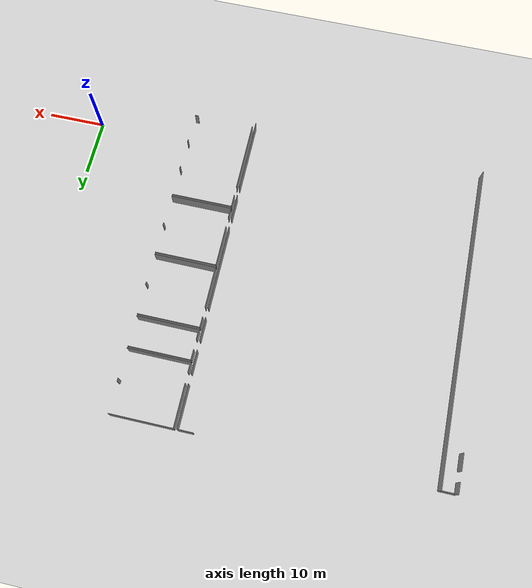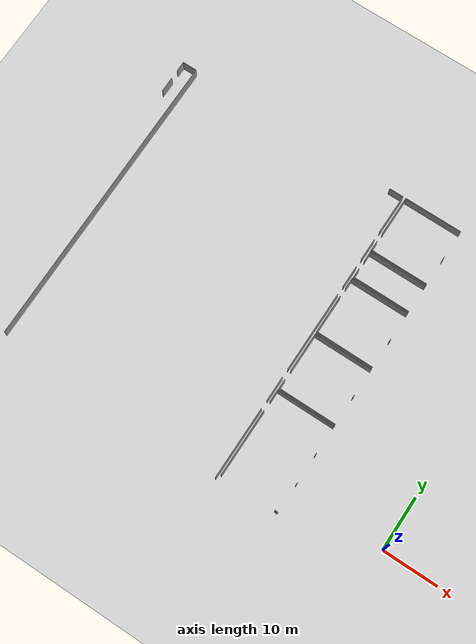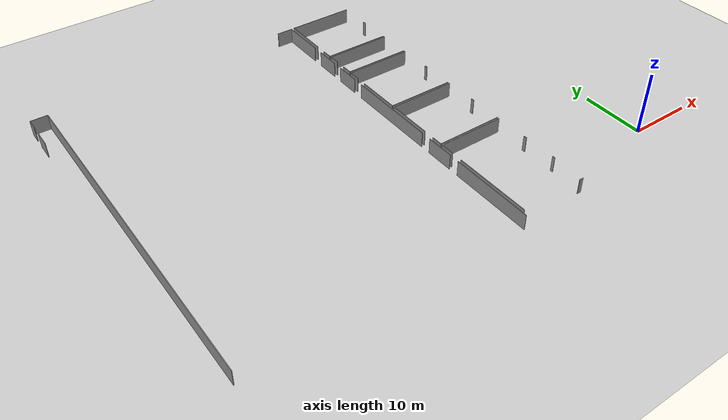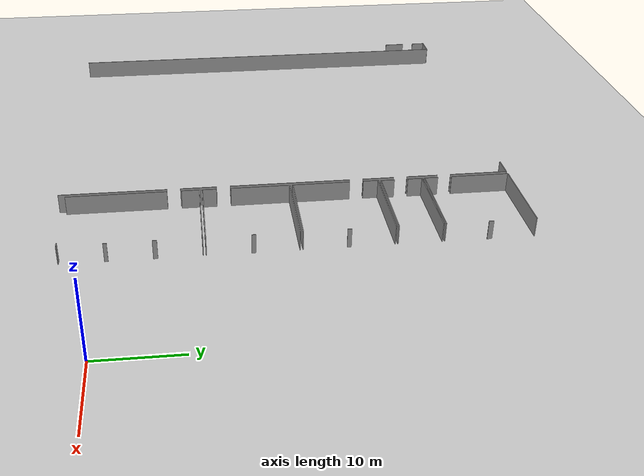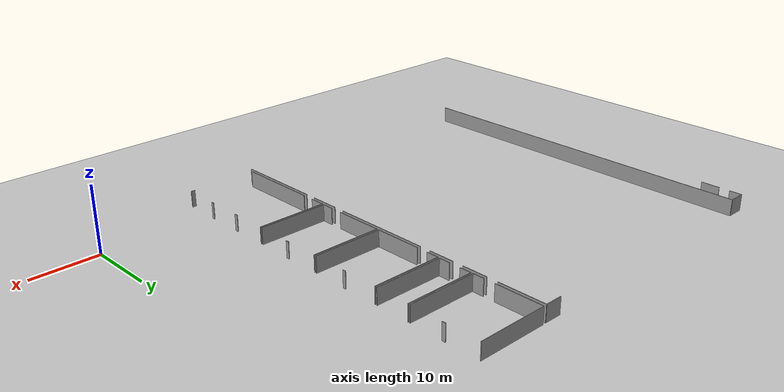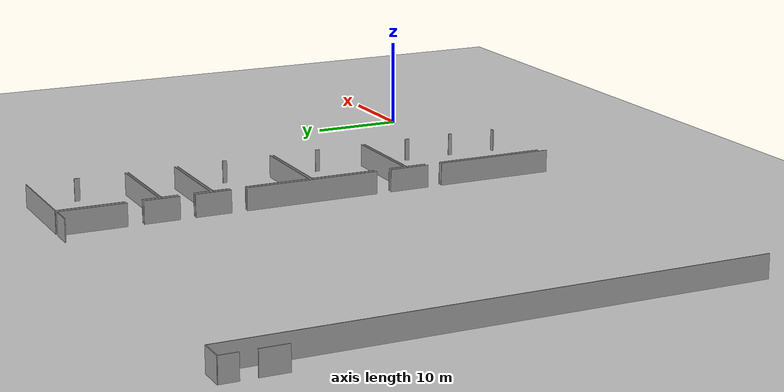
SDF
<sdf version="1.6">
 <world name="default">
  <model name="ground_plane">
   <static>1</static>
   <link name="link">
    <collision name="collision">
     <geometry><plane><normal>0 0 1</normal><size>100 100</size></plane></geometry>
     <surface><friction><ode><mu>100</mu><mu2>50</mu2></ode></friction></surface>
    </collision>
    <visual name="visual">
     <cast_shadows>0</cast_shadows>
     <geometry><plane><normal>0 0 1</normal><size>100 100</size></plane></geometry>
     <material>
      <script><uri>file://media/materials/scripts/gazebo.material</uri><name>Gazebo/Grey</name></script>
     </material>
    </visual>
   </link>
  </model>
  <model name="0510045905_A_40_1_103">
   <static>1</static>
   <link name="Wall_12">
    <collision name="Wall_12_Collision">
     <geometry><box><size>2.8588288294 0.1 2.5</size></box></geometry>
     <pose>1.4294144147 0 1.25 0 0 0</pose>
    </collision>
    <visual name="Wall_12_Visual">
     <pose>1.4294144147 0 1.25 0 0 0</pose>
     <geometry><box><size>2.8588288294 0.1 2.5</size></box></geometry>
     <material>
      <script><uri>file://media/materials/scripts/gazebo.material</uri><name>Gazebo/Grey</name></script>
      <ambient>1 1 1 1</ambient>
     </material>
    </visual>
    <pose>11.2497858543 -17.5187020552 0 0 0 1.57079632679</pose>
   </link>
   <link name="Wall_13">
    <collision name="Wall_13_Collision">
     <geometry><box><size>1.88575090576 0.1 2.5</size></box></geometry>
     <pose>0.942875452878 0 1.25 0 0 0</pose>
    </collision>
    <visual name="Wall_13_Visual">
     <pose>0.942875452878 0 1.25 0 0 0</pose>
     <geometry><box><size>1.88575090576 0.1 2.5</size></box></geometry>
     <material>
      <script><uri>file://media/materials/scripts/gazebo.material</uri><name>Gazebo/Grey</name></script>
      <ambient>1 1 1 1</ambient>
     </material>
    </visual>
    <pose>11.2497858543 -13.0309702226 0 0 0 1.57079632679</pose>
   </link>
   <link name="Wall_14">
    <collision name="Wall_14_Collision">
     <geometry><box><size>2.6314219907 0.1 2.5</size></box></geometry>
     <pose>1.31571099535 0 1.25 0 0 0</pose>
    </collision>
    <visual name="Wall_14_Visual">
     <pose>1.31571099535 0 1.25 0 0 0</pose>
     <geometry><box><size>2.6314219907 0.1 2.5</size></box></geometry>
     <material>
      <script><uri>file://media/materials/scripts/gazebo.material</uri><name>Gazebo/Grey</name></script>
      <ambient>1 1 1 1</ambient>
     </material>
    </visual>
    <pose>11.2497858543 -11.1452193169 0 0 0 0.0</pose>
   </link>
   <link name="Wall_15">
    <collision name="Wall_15_Collision">
     <geometry><box><size>55.7222895503 0.1 2.5</size></box></geometry>
     <pose>27.8611447752 0 1.25 0 0 0</pose>
    </collision>
    <visual name="Wall_15_Visual">
     <pose>27.8611447752 0 1.25 0 0 0</pose>
     <geometry><box><size>55.7222895503 0.1 2.5</size></box></geometry>
     <material>
      <script><uri>file://media/materials/scripts/gazebo.material</uri><name>Gazebo/Grey</name></script>
      <ambient>1 1 1 1</ambient>
     </material>
    </visual>
    <pose>13.881207845 -11.1452193169 0 0 0 -1.57079632679</pose>
   </link>
   <link name="Wall_65">
    <collision name="Wall_65_Collision">
     <geometry><box><size>2.63675183848 0.1 2.5</size></box></geometry>
     <pose>1.31837591924 0 1.25 0 0 0</pose>
    </collision>
    <visual name="Wall_65_Visual">
     <pose>1.31837591924 0 1.25 0 0 0</pose>
     <geometry><box><size>2.63675183848 0.1 2.5</size></box></geometry>
     <material>
      <script><uri>file://media/materials/scripts/gazebo.material</uri><name>Gazebo/Grey</name></script>
      <ambient>1 1 1 1</ambient>
     </material>
    </visual>
    <pose>53.0142192725 -11.206131863 0 0 0 0.0</pose>
   </link>
   <link name="Wall_66">
    <collision name="Wall_66_Collision">
     <geometry><box><size>7.33184012995 0.1 2.5</size></box></geometry>
     <pose>3.66592006497 0 1.25 0 0 0</pose>
    </collision>
    <visual name="Wall_66_Visual">
     <pose>3.66592006497 0 1.25 0 0 0</pose>
     <geometry><box><size>7.33184012995 0.1 2.5</size></box></geometry>
     <material>
      <script><uri>file://media/materials/scripts/gazebo.material</uri><name>Gazebo/Grey</name></script>
      <ambient>1 1 1 1</ambient>
     </material>
    </visual>
    <pose>55.650971111 -11.206131863 0 0 0 -1.57079632679</pose>
   </link>
   <link name="Wall_67">
    <collision name="Wall_67_Collision">
     <geometry><box><size>3.92429078127 0.1 2.5</size></box></geometry>
     <pose>1.96214539063 0 1.25 0 0 0</pose>
    </collision>
    <visual name="Wall_67_Visual">
     <pose>1.96214539063 0 1.25 0 0 0</pose>
     <geometry><box><size>3.92429078127 0.1 2.5</size></box></geometry>
     <material>
      <script><uri>file://media/materials/scripts/gazebo.material</uri><name>Gazebo/Grey</name></script>
      <ambient>1 1 1 1</ambient>
     </material>
    </visual>
    <pose>55.650971111 -20.2625584538 0 0 0 -1.57079632679</pose>
   </link>
   <link name="Wall_68">
    <collision name="Wall_68_Collision">
     <geometry><box><size>3.99053317513 0.1 2.5</size></box></geometry>
     <pose>1.99526658756 0 1.25 0 0 0</pose>
    </collision>
    <visual name="Wall_68_Visual">
     <pose>1.99526658756 0 1.25 0 0 0</pose>
     <geometry><box><size>3.99053317513 0.1 2.5</size></box></geometry>
     <material>
      <script><uri>file://media/materials/scripts/gazebo.material</uri><name>Gazebo/Grey</name></script>
      <ambient>1 1 1 1</ambient>
     </material>
    </visual>
    <pose>55.650971111 -25.8479851272 0 0 0 -1.57079632679</pose>
   </link>
   <link name="Wall_69">
    <collision name="Wall_69_Collision">
     <geometry><box><size>15.0337239773 0.1 2.5</size></box></geometry>
     <pose>7.51686198867 0 1.25 0 0 0</pose>
    </collision>
    <visual name="Wall_69_Visual">
     <pose>7.51686198867 0 1.25 0 0 0</pose>
     <geometry><box><size>15.0337239773 0.1 2.5</size></box></geometry>
     <material>
      <script><uri>file://media/materials/scripts/gazebo.material</uri><name>Gazebo/Grey</name></script>
      <ambient>1 1 1 1</ambient>
     </material>
    </visual>
    <pose>55.650971111 -31.5364555243 0 0 0 -1.57079632679</pose>
   </link>
   <link name="Wall_70">
    <collision name="Wall_70_Collision">
     <geometry><box><size>4.50219856221 0.1 2.5</size></box></geometry>
     <pose>2.25109928111 0 1.25 0 0 0</pose>
    </collision>
    <visual name="Wall_70_Visual">
     <pose>2.25109928111 0 1.25 0 0 0</pose>
     <geometry><box><size>4.50219856221 0.1 2.5</size></box></geometry>
     <material>
      <script><uri>file://media/materials/scripts/gazebo.material</uri><name>Gazebo/Grey</name></script>
      <ambient>1 1 1 1</ambient>
     </material>
    </visual>
    <pose>55.650971111 -48.2407060779 0 0 0 -1.57079632679</pose>
   </link>
   <link name="Wall_71">
    <collision name="Wall_71_Collision">
     <geometry><box><size>13.2946707867 0.1 2.5</size></box></geometry>
     <pose>6.64733539336 0 1.25 0 0 0</pose>
    </collision>
    <visual name="Wall_71_Visual">
     <pose>6.64733539336 0 1.25 0 0 0</pose>
     <geometry><box><size>13.2946707867 0.1 2.5</size></box></geometry>
     <material>
      <script><uri>file://media/materials/scripts/gazebo.material</uri><name>Gazebo/Grey</name></script>
      <ambient>1 1 1 1</ambient>
     </material>
    </visual>
    <pose>55.650971111 -54.3893200003 0 0 0 -1.57079632679</pose>
   </link>
   <link name="Wall_89">
    <collision name="Wall_89_Collision">
     <geometry><box><size>0.593135917463 0.1 2.5</size></box></geometry>
     <pose>0.296567958732 0 1.25 0 0 0</pose>
    </collision>
    <visual name="Wall_89_Visual">
     <pose>0.296567958732 0 1.25 0 0 0</pose>
     <geometry><box><size>0.593135917463 0.1 2.5</size></box></geometry>
     <material>
      <script><uri>file://media/materials/scripts/gazebo.material</uri><name>Gazebo/Grey</name></script>
      <ambient>1 1 1 1</ambient>
     </material>
    </visual>
    <pose>66.8908586765 -16.9565300153 0 0 0 1.57079632679</pose>
   </link>
   <link name="Wall_90">
    <collision name="Wall_90_Collision">
     <geometry><box><size>10.7005577305 0.1 2.5</size></box></geometry>
     <pose>5.35027886525 0 1.25 0 0 0</pose>
    </collision>
    <visual name="Wall_90_Visual">
     <pose>5.35027886525 0 1.25 0 0 0</pose>
     <geometry><box><size>10.7005577305 0.1 2.5</size></box></geometry>
     <material>
      <script><uri>file://media/materials/scripts/gazebo.material</uri><name>Gazebo/Grey</name></script>
      <ambient>1 1 1 1</ambient>
     </material>
    </visual>
    <pose>66.8908586765 -11.1771984036 0 0 0 3.14159265359</pose>
   </link>
   <link name="Wall_91">
    <collision name="Wall_91_Collision">
     <geometry><box><size>7.34402263916 0.1 2.5</size></box></geometry>
     <pose>3.67201131958 0 1.25 0 0 0</pose>
    </collision>
    <visual name="Wall_91_Visual">
     <pose>3.67201131958 0 1.25 0 0 0</pose>
     <geometry><box><size>7.34402263916 0.1 2.5</size></box></geometry>
     <material>
      <script><uri>file://media/materials/scripts/gazebo.material</uri><name>Gazebo/Grey</name></script>
      <ambient>1 1 1 1</ambient>
     </material>
    </visual>
    <pose>56.190300946 -11.1771984036 0 0 0 -1.57079632679</pose>
   </link>
   <link name="Wall_92">
    <collision name="Wall_92_Collision">
     <geometry><box><size>1.75580414078 0.1 2.5</size></box></geometry>
     <pose>0.877902070392 0 1.25 0 0 0</pose>
    </collision>
    <visual name="Wall_92_Visual">
     <pose>0.877902070392 0 1.25 0 0 0</pose>
     <geometry><box><size>1.75580414078 0.1 2.5</size></box></geometry>
     <material>
      <script><uri>file://media/materials/scripts/gazebo.material</uri><name>Gazebo/Grey</name></script>
      <ambient>1 1 1 1</ambient>
     </material>
    </visual>
    <pose>56.190300946 -20.2833702404 0 0 0 -1.57079632679</pose>
   </link>
   <link name="Wall_93">
    <collision name="Wall_93_Collision">
     <geometry><box><size>10.7005685662 0.1 2.5</size></box></geometry>
     <pose>5.3502842831 0 1.25 0 0 0</pose>
    </collision>
    <visual name="Wall_93_Visual">
     <pose>5.3502842831 0 1.25 0 0 0</pose>
     <geometry><box><size>10.7005685662 0.1 2.5</size></box></geometry>
     <material>
      <script><uri>file://media/materials/scripts/gazebo.material</uri><name>Gazebo/Grey</name></script>
      <ambient>1 1 1 1</ambient>
     </material>
    </visual>
    <pose>56.190300946 -22.0391743812 0 0 0 -0.00142311518927</pose>
   </link>
   <link name="Wall_94">
    <collision name="Wall_94_Collision">
     <geometry><box><size>10.6513200891 0.1 2.5</size></box></geometry>
     <pose>5.32566004454 0 1.25 0 0 0</pose>
    </collision>
    <visual name="Wall_94_Visual">
     <pose>5.32566004454 0 1.25 0 0 0</pose>
     <geometry><box><size>10.6513200891 0.1 2.5</size></box></geometry>
     <material>
      <script><uri>file://media/materials/scripts/gazebo.material</uri><name>Gazebo/Grey</name></script>
      <ambient>1 1 1 1</ambient>
     </material>
    </visual>
    <pose>66.8827370037 -22.3508435753 0 0 0 3.14159265359</pose>
   </link>
   <link name="Wall_95">
    <collision name="Wall_95_Collision">
     <geometry><box><size>1.81392486184 0.1 2.5</size></box></geometry>
     <pose>0.906962430918 0 1.25 0 0 0</pose>
    </collision>
    <visual name="Wall_95_Visual">
     <pose>0.906962430918 0 1.25 0 0 0</pose>
     <geometry><box><size>1.81392486184 0.1 2.5</size></box></geometry>
     <material>
      <script><uri>file://media/materials/scripts/gazebo.material</uri><name>Gazebo/Grey</name></script>
      <ambient>1 1 1 1</ambient>
     </material>
    </visual>
    <pose>56.2314169147 -22.3508435753 0 0 0 -1.57079632679</pose>
   </link>
   <link name="Wall_96">
    <collision name="Wall_96_Collision">
     <geometry><box><size>1.7268706814 0.1 2.5</size></box></geometry>
     <pose>0.863435340698 0 1.25 0 0 0</pose>
    </collision>
    <visual name="Wall_96_Visual">
     <pose>0.863435340698 0 1.25 0 0 0</pose>
     <geometry><box><size>1.7268706814 0.1 2.5</size></box></geometry>
     <material>
      <script><uri>file://media/materials/scripts/gazebo.material</uri><name>Gazebo/Grey</name></script>
      <ambient>1 1 1 1</ambient>
     </material>
    </visual>
    <pose>56.2314169147 -25.8916391185 0 0 0 -1.57079632679</pose>
   </link>
   <link name="Wall_97">
    <collision name="Wall_97_Collision">
     <geometry><box><size>10.6513593867 0.1 2.5</size></box></geometry>
     <pose>5.32567969336 0 1.25 0 0 0</pose>
    </collision>
    <visual name="Wall_97_Visual">
     <pose>5.32567969336 0 1.25 0 0 0</pose>
     <geometry><box><size>10.6513593867 0.1 2.5</size></box></geometry>
     <material>
      <script><uri>file://media/materials/scripts/gazebo.material</uri><name>Gazebo/Grey</name></script>
      <ambient>1 1 1 1</ambient>
     </material>
    </visual>
    <pose>56.2314169147 -27.6185097999 0 0 0 -0.00271641336292</pose>
   </link>
   <link name="Wall_98">
    <collision name="Wall_98_Collision">
     <geometry><box><size>0.504558923371 0.1 2.5</size></box></geometry>
     <pose>0.252279461685 0 1.25 0 0 0</pose>
    </collision>
    <visual name="Wall_98_Visual">
     <pose>0.252279461685 0 1.25 0 0 0</pose>
     <geometry><box><size>0.504558923371 0.1 2.5</size></box></geometry>
     <material>
      <script><uri>file://media/materials/scripts/gazebo.material</uri><name>Gazebo/Grey</name></script>
      <ambient>1 1 1 1</ambient>
     </material>
    </visual>
    <pose>66.8809603878 -33.6884450169 0 0 0 1.57079632679</pose>
   </link>
   <link name="Wall_99">
    <collision name="Wall_99_Collision">
     <geometry><box><size>10.715785867 0.1 2.5</size></box></geometry>
     <pose>5.35789293351 0 1.25 0 0 0</pose>
    </collision>
    <visual name="Wall_99_Visual">
     <pose>5.35789293351 0 1.25 0 0 0</pose>
     <geometry><box><size>10.715785867 0.1 2.5</size></box></geometry>
     <material>
      <script><uri>file://media/materials/scripts/gazebo.material</uri><name>Gazebo/Grey</name></script>
      <ambient>1 1 1 1</ambient>
     </material>
    </visual>
    <pose>66.8809603878 -27.9723101718 0 0 0 3.14159265359</pose>
   </link>
   <link name="Wall_100">
    <collision name="Wall_100_Collision">
     <geometry><box><size>1.8801672557 0.1 2.5</size></box></geometry>
     <pose>0.94008362785 0 1.25 0 0 0</pose>
    </collision>
    <visual name="Wall_100_Visual">
     <pose>0.94008362785 0 1.25 0 0 0</pose>
     <geometry><box><size>1.8801672557 0.1 2.5</size></box></geometry>
     <material>
      <script><uri>file://media/materials/scripts/gazebo.material</uri><name>Gazebo/Grey</name></script>
      <ambient>1 1 1 1</ambient>
     </material>
    </visual>
    <pose>56.1651745208 -27.9723101718 0 0 0 -1.57079632679</pose>
   </link>
   <link name="Wall_101">
    <collision name="Wall_101_Collision">
     <geometry><box><size>7.2026547718 0.1 2.5</size></box></geometry>
     <pose>3.6013273859 0 1.25 0 0 0</pose>
    </collision>
    <visual name="Wall_101_Visual">
     <pose>3.6013273859 0 1.25 0 0 0</pose>
     <geometry><box><size>7.2026547718 0.1 2.5</size></box></geometry>
     <material>
      <script><uri>file://media/materials/scripts/gazebo.material</uri><name>Gazebo/Grey</name></script>
      <ambient>1 1 1 1</ambient>
     </material>
    </visual>
    <pose>56.1651745208 -31.5836627475 0 0 0 -1.57079632679</pose>
   </link>
   <link name="Wall_102">
    <collision name="Wall_102_Collision">
     <geometry><box><size>10.715910949 0.1 2.5</size></box></geometry>
     <pose>5.35795547451 0 1.25 0 0 0</pose>
    </collision>
    <visual name="Wall_102_Visual">
     <pose>5.35795547451 0 1.25 0 0 0</pose>
     <geometry><box><size>10.715910949 0.1 2.5</size></box></geometry>
     <material>
      <script><uri>file://media/materials/scripts/gazebo.material</uri><name>Gazebo/Grey</name></script>
      <ambient>1 1 1 1</ambient>
     </material>
    </visual>
    <pose>56.1651745208 -38.7863175193 0 0 0 -0.0048316812138</pose>
   </link>
   <link name="Wall_103">
    <collision name="Wall_103_Collision">
     <geometry><box><size>10.7135016465 0.1 2.5</size></box></geometry>
     <pose>5.35675082327 0 1.25 0 0 0</pose>
    </collision>
    <visual name="Wall_103_Visual">
     <pose>5.35675082327 0 1.25 0 0 0</pose>
     <geometry><box><size>10.7135016465 0.1 2.5</size></box></geometry>
     <material>
      <script><uri>file://media/materials/scripts/gazebo.material</uri><name>Gazebo/Grey</name></script>
      <ambient>1 1 1 1</ambient>
     </material>
    </visual>
    <pose>66.8984727448 -50.044732651 0 0 0 3.14159265359</pose>
   </link>
   <link name="Wall_104">
    <collision name="Wall_104_Collision">
     <geometry><box><size>1.73549995876 0.1 2.5</size></box></geometry>
     <pose>0.867749979379 0 1.25 0 0 0</pose>
    </collision>
    <visual name="Wall_104_Visual">
     <pose>0.867749979379 0 1.25 0 0 0</pose>
     <geometry><box><size>1.73549995876 0.1 2.5</size></box></geometry>
     <material>
      <script><uri>file://media/materials/scripts/gazebo.material</uri><name>Gazebo/Grey</name></script>
      <ambient>1 1 1 1</ambient>
     </material>
    </visual>
    <pose>56.1849710983 -50.044732651 0 0 0 1.57079632679</pose>
   </link>
   <link name="Wall_105">
    <collision name="Wall_105_Collision">
     <geometry><box><size>7.32828689809 0.1 2.5</size></box></geometry>
     <pose>3.66414344905 0 1.25 0 0 0</pose>
    </collision>
    <visual name="Wall_105_Visual">
     <pose>3.66414344905 0 1.25 0 0 0</pose>
     <geometry><box><size>7.32828689809 0.1 2.5</size></box></geometry>
     <material>
      <script><uri>file://media/materials/scripts/gazebo.material</uri><name>Gazebo/Grey</name></script>
      <ambient>1 1 1 1</ambient>
     </material>
    </visual>
    <pose>56.1849710983 -46.5120587806 0 0 0 1.57079632679</pose>
   </link>
   <link name="Wall_106">
    <collision name="Wall_106_Collision">
     <geometry><box><size>10.6977659055 0.1 2.5</size></box></geometry>
     <pose>5.34888295274 0 1.25 0 0 0</pose>
    </collision>
    <visual name="Wall_106_Visual">
     <pose>5.34888295274 0 1.25 0 0 0</pose>
     <geometry><box><size>10.6977659055 0.1 2.5</size></box></geometry>
     <material>
      <script><uri>file://media/materials/scripts/gazebo.material</uri><name>Gazebo/Grey</name></script>
      <ambient>1 1 1 1</ambient>
     </material>
    </visual>
    <pose>56.1849710983 -39.1837718825 0 0 0 0.0</pose>
   </link>
   <link name="Wall_107">
    <collision name="Wall_107_Collision">
     <geometry><box><size>0.50785835295 0.1 2.5</size></box></geometry>
     <pose>0.253929176475 0 1.25 0 0 0</pose>
    </collision>
    <visual name="Wall_107_Visual">
     <pose>0.253929176475 0 1.25 0 0 0</pose>
     <geometry><box><size>0.50785835295 0.1 2.5</size></box></geometry>
     <material>
      <script><uri>file://media/materials/scripts/gazebo.material</uri><name>Gazebo/Grey</name></script>
      <ambient>1 1 1 1</ambient>
     </material>
    </visual>
    <pose>66.8827370037 -44.3062632056 0 0 0 -1.57079632679</pose>
   </link>
   <link name="Wall_127">
    <collision name="Wall_127_Collision">
     <geometry><box><size>0.441362156812 0.1 2.5</size></box></geometry>
     <pose>0.220681078406 0 1.25 0 0 0</pose>
    </collision>
    <visual name="Wall_127_Visual">
     <pose>0.220681078406 0 1.25 0 0 0</pose>
     <geometry><box><size>0.441362156812 0.1 2.5</size></box></geometry>
     <material>
      <script><uri>file://media/materials/scripts/gazebo.material</uri><name>Gazebo/Grey</name></script>
      <ambient>1 1 1 1</ambient>
     </material>
    </visual>
    <pose>66.8809603878 -61.6178626041 0 0 0 1.57079632679</pose>
   </link>
   <link name="Wall_128">
    <collision name="Wall_128_Collision">
     <geometry><box><size>0.537299416889 0.1 2.5</size></box></geometry>
     <pose>0.268649708445 0 1.25 0 0 0</pose>
    </collision>
    <visual name="Wall_128_Visual">
     <pose>0.268649708445 0 1.25 0 0 0</pose>
     <geometry><box><size>0.537299416889 0.1 2.5</size></box></geometry>
     <material>
      <script><uri>file://media/materials/scripts/gazebo.material</uri><name>Gazebo/Grey</name></script>
      <ambient>1 1 1 1</ambient>
     </material>
    </visual>
    <pose>66.8809603878 -56.0908104541 0 0 0 1.57079632679</pose>
   </link>
   <link name="Wall_129">
    <collision name="Wall_129_Collision">
     <geometry><box><size>10.7221309239 0.1 2.5</size></box></geometry>
     <pose>5.36106546195 0 1.25 0 0 0</pose>
    </collision>
    <visual name="Wall_129_Visual">
     <pose>5.36106546195 0 1.25 0 0 0</pose>
     <geometry><box><size>10.7221309239 0.1 2.5</size></box></geometry>
     <material>
      <script><uri>file://media/materials/scripts/gazebo.material</uri><name>Gazebo/Grey</name></script>
      <ambient>1 1 1 1</ambient>
     </material>
    </visual>
    <pose>66.8809603878 -50.3866043159 0 0 0 3.14159265359</pose>
   </link>
   <link name="Wall_130">
    <collision name="Wall_130_Collision">
     <geometry><box><size>2.23472903435 0.1 2.5</size></box></geometry>
     <pose>1.11736451717 0 1.25 0 0 0</pose>
    </collision>
    <visual name="Wall_130_Visual">
     <pose>1.11736451717 0 1.25 0 0 0</pose>
     <geometry><box><size>2.23472903435 0.1 2.5</size></box></geometry>
     <material>
      <script><uri>file://media/materials/scripts/gazebo.material</uri><name>Gazebo/Grey</name></script>
      <ambient>1 1 1 1</ambient>
     </material>
    </visual>
    <pose>56.1588294639 -50.3866043159 0 0 0 -1.57079632679</pose>
   </link>
   <link name="Wall_131">
    <collision name="Wall_131_Collision">
     <geometry><box><size>12.3990025571 0.1 2.5</size></box></geometry>
     <pose>6.19950127853 0 1.25 0 0 0</pose>
    </collision>
    <visual name="Wall_131_Visual">
     <pose>6.19950127853 0 1.25 0 0 0</pose>
     <geometry><box><size>12.3990025571 0.1 2.5</size></box></geometry>
     <material>
      <script><uri>file://media/materials/scripts/gazebo.material</uri><name>Gazebo/Grey</name></script>
      <ambient>1 1 1 1</ambient>
     </material>
    </visual>
    <pose>56.1588294639 -54.4002334981 0 0 0 -1.57079632679</pose>
   </link>
   <link name="Wall_133">
    <collision name="Wall_133_Collision">
     <geometry><box><size>0.61323593162 0.1 2.5</size></box></geometry>
     <pose>0.30661796581 0 1.25 0 0 0</pose>
    </collision>
    <visual name="Wall_133_Visual">
     <pose>0.30661796581 0 1.25 0 0 0</pose>
     <geometry><box><size>0.61323593162 0.1 2.5</size></box></geometry>
     <material>
      <script><uri>file://media/materials/scripts/gazebo.material</uri><name>Gazebo/Grey</name></script>
      <ambient>1 1 1 1</ambient>
     </material>
    </visual>
    <pose>66.2680278929 -66.7992360552 0 0 0 -0.0314595965996</pose>
   </link>
   <pose>-83.8 62.4001624335 0 0 0 0</pose>
  </model>
 </world>
</sdf>
